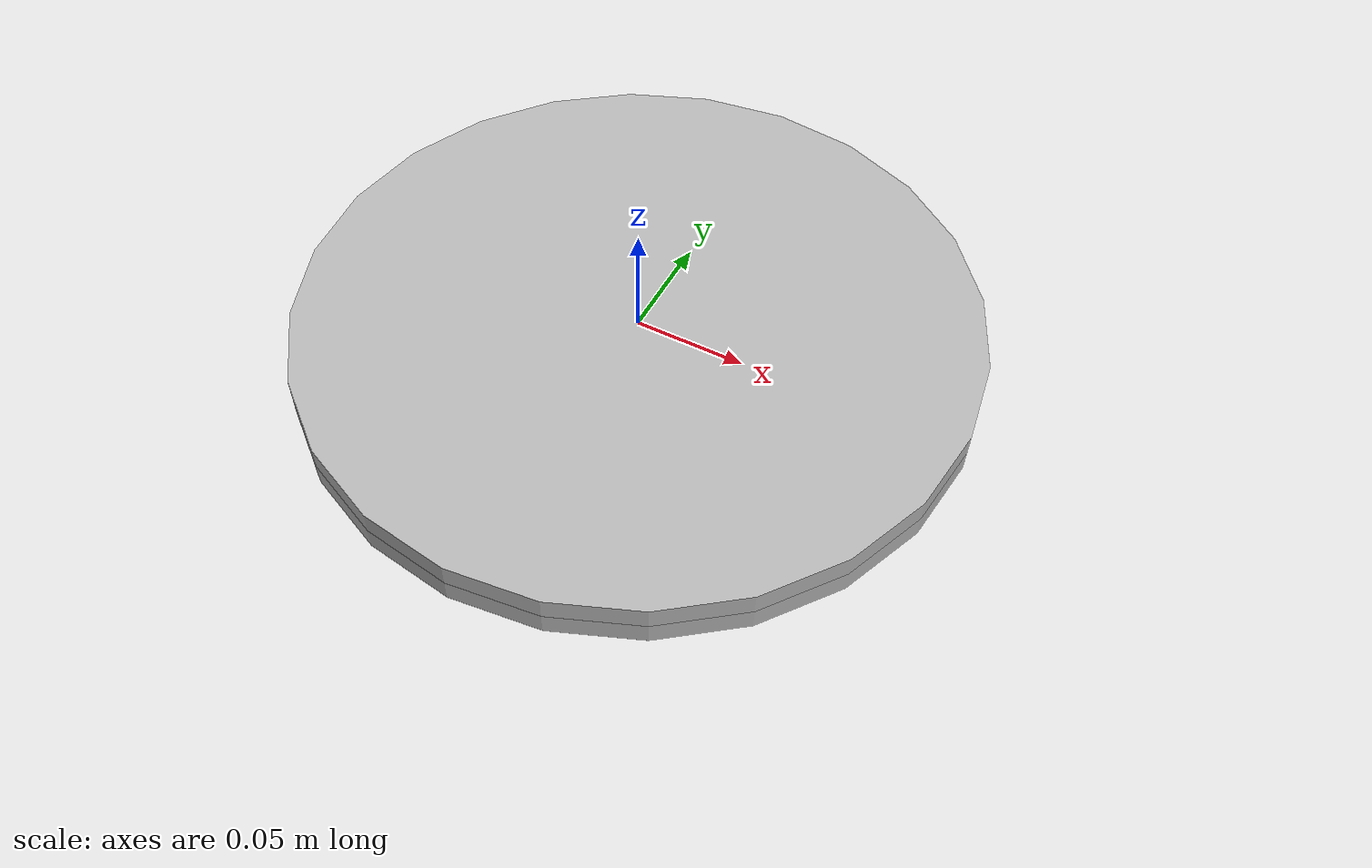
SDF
<!-- Creation of the circular object that has been spawned in gazebo -->

<?xml version="1.0"?>
<sdf version="1.6">
  <model name="circular_object">
    <static>true</static>
    <link name="link">
      <visual name="front_visual">
        <pose>0 0 0.005 0 0 0</pose>
        <geometry>
          <cylinder>
            <radius>0.15</radius>
            <length>0.01</length>
          </cylinder>
        </geometry>
        <material>
          <script>
            <uri>model://circular_object/materials/scripts</uri>
            <uri>model://circular_object/materials/textures</uri>
            <name>CircularObject</name>
          </script>
        </material>
      </visual>
      <!-- Hide the marker from the back -->
      <visual name="rear_visual">
        <pose>0 0 -0.005 0 0 0</pose>
        <geometry>
          <cylinder>
            <radius>0.15</radius>
            <length>0.01</length>
          </cylinder>
        </geometry>
      </visual>
      <collision name="collision">
        <pose>0 0 0 0 0 0</pose>
        <geometry>
          <cylinder>
            <radius>0.15</radius>
            <length>0.01</length>
          </cylinder>
        </geometry>
      </collision>
    </link>
  </model>
</sdf>
